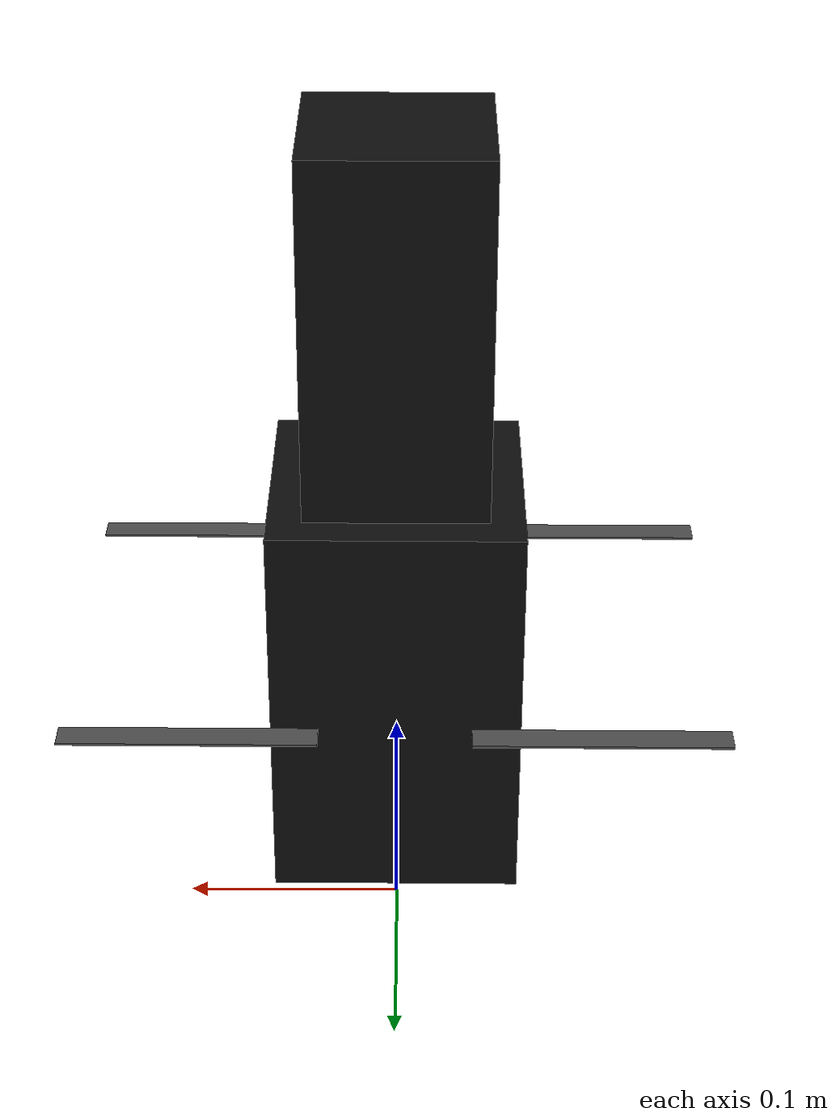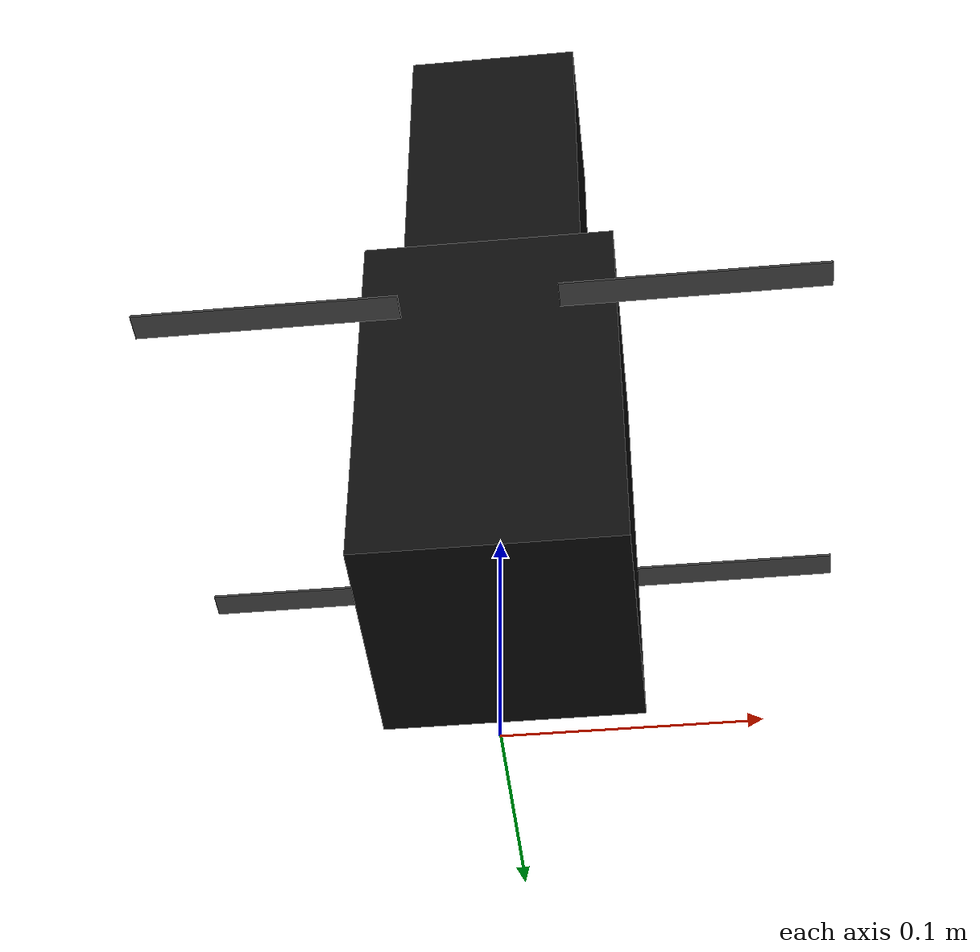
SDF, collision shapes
<?xml version="1.0"?>
<sdf version="1.9">
  <model name="arms_drone">
    <pose>0 0 0.24 0 0 0</pose>
    <self_collide>false</self_collide>
    <static>false</static>

    <!-- ================================================================
         base_link — 동체 + 센서
         ================================================================ -->
    <link name="base_link">
      <!-- 요격드론 물리량: AUW = 1.05kg (실기체 실측 질량과 일치. 동체 1.008 + 로터 4×0.008 + 카메라 0.01).
           관성은 이전값을 질량비(1.008/1.15≈0.877)로 스케일한 근사 — 실기체 실측 관성으로 교체하면
           rate PID 튜닝 전이가 더 정확해진다. -->
      <inertial>
        <mass>1.008</mass>
        <inertia>
          <ixx>0.0019</ixx>
          <ixy>0</ixy>
          <ixz>0</ixz>
          <iyy>0.0019</iyy>
          <iyz>0</iyz>
          <izz>0.0033</izz>
        </inertia>
      </inertial>
      <gravity>true</gravity>
      <velocity_decay/>

      <visual name="base_link_visual">
        <pose>0 0 0 -1.5708 0 0.7854</pose>
        <geometry>
          <mesh>
            <scale>0.001 0.001 0.001</scale>
            <uri>model://arms_drone/meshes/arms_model_v2.stl</uri>
          </mesh>
        </geometry>
        <!-- 무광 블랙 -->
        <material>
          <ambient>0.02 0.02 0.02 1</ambient>
          <diffuse>0.05 0.05 0.05 1</diffuse>
          <specular>0.12 0.12 0.12 1</specular>
        </material>
      </visual>

      <collision name="base_link_collision_0">
        <pose>0 0 -0.1005 0 0 0</pose>
        <geometry>
          <box><size>0.11 0.11 0.181</size></box>
        </geometry>
        <surface>
          <contact><ode><min_depth>0.001</min_depth><max_vel>0</max_vel></ode></contact>
          <friction><ode/></friction>
        </surface>
      </collision>
      <collision name="base_link_collision_1">
        <pose>0 0 0.07 0 0 0</pose>
        <geometry>
          <box><size>0.08 0.08 0.16</size></box>
        </geometry>
        <surface>
          <contact><ode><min_depth>0.001</min_depth><max_vel>0</max_vel></ode></contact>
          <friction><ode/></friction>
        </surface>
      </collision>

      <!-- Sensors -->
      <sensor name="air_pressure_sensor" type="air_pressure">
        <gz_frame_id>base_link</gz_frame_id>
        <always_on>1</always_on>
        <update_rate>50</update_rate>
        <air_pressure>
          <pressure><noise type="gaussian"><mean>0</mean><stddev>3</stddev></noise></pressure>
        </air_pressure>
      </sensor>

      <sensor name="magnetometer_sensor" type="magnetometer">
        <gz_frame_id>base_link</gz_frame_id>
        <always_on>1</always_on>
        <update_rate>100</update_rate>
        <magnetometer>
          <x><noise type="gaussian"><stddev>0.0001</stddev></noise></x>
          <y><noise type="gaussian"><stddev>0.0001</stddev></noise></y>
          <z><noise type="gaussian"><stddev>0.0001</stddev></noise></z>
        </magnetometer>
      </sensor>

      <sensor name="imu_sensor" type="imu">
        <gz_frame_id>base_link</gz_frame_id>
        <always_on>1</always_on>
        <update_rate>250</update_rate>
        <imu>
          <angular_velocity>
            <x><noise type="gaussian"><mean>0.0</mean><stddev>0.0008726646</stddev></noise></x>
            <y><noise type="gaussian"><mean>0.0</mean><stddev>0.0008726646</stddev></noise></y>
            <z><noise type="gaussian"><mean>0.0</mean><stddev>0.0008726646</stddev></noise></z>
          </angular_velocity>
          <linear_acceleration>
            <x><noise type="gaussian"><mean>0.0</mean><stddev>0.00637</stddev></noise></x>
            <y><noise type="gaussian"><mean>0.0</mean><stddev>0.00637</stddev></noise></y>
            <z><noise type="gaussian"><mean>0.0</mean><stddev>0.00686</stddev></noise></z>
          </linear_acceleration>
        </imu>
      </sensor>

      <sensor name="navsat_sensor" type="navsat">
        <gz_frame_id>base_link</gz_frame_id>
        <always_on>1</always_on>
        <update_rate>30</update_rate>
      </sensor>
    </link>

    <!-- ================================================================
         Rotors (4x)
         ================================================================ -->

    <!-- Rotor 0 — front-right, CCW -->
    <link name="rotor_0">
      <gravity>true</gravity>
      <self_collide>false</self_collide>
      <velocity_decay/>
      <pose>0.0876 -0.0876 -0.087 0 0 0</pose>
      <inertial>
        <mass>0.008</mass>
        <inertia>
          <ixx>2.0e-07</ixx>
          <iyy>1.3e-05</iyy>
          <izz>1.3e-05</izz>
        </inertia>
      </inertial>
      <visual name="rotor_0_visual">
        <pose>-0.00944 0.0628 0.00686 3.14159 0 0</pose>   <!-- 프로펠러 상하반전(roll 180°)+센터링. 회전 반영해 오프셋 재계산(안하면 다시 밀림). 추력은 플러그인이 조인트축으로 내므로 영향無 -->
        <geometry>
          <mesh>
            <scale>0.363 0.363 0.363</scale>
            <uri>model://arms_drone/meshes/1345_prop_ccw.stl</uri>
          </mesh>
        </geometry>
        <material><script><name>Gazebo/DarkGrey</name><uri>file://media/materials/scripts/gazebo.material</uri></script></material>
      </visual>
      <!-- 모터벨 제거: arms_model_v2.stl 동체가 모터포드를 이미 포함 -->
      <collision name="rotor_0_collision">
        <pose>0 0 0 0 0 0</pose>
        <geometry><box><size>0.11 0.012 0.001</size></box></geometry>
        <surface><contact><ode><min_depth>0.001</min_depth><max_vel>0</max_vel></ode></contact><friction><ode/></friction></surface>
      </collision>
    </link>
    <joint name="rotor_0_joint" type="revolute">
      <parent>base_link</parent><child>rotor_0</child>
      <axis><xyz>0 0 1</xyz><limit><lower>-1e+16</lower><upper>1e+16</upper></limit><dynamics><spring_reference>0</spring_reference><spring_stiffness>0</spring_stiffness></dynamics></axis>
    </joint>

    <!-- Rotor 1 — rear-left, CCW -->
    <link name="rotor_1">
      <gravity>true</gravity>
      <self_collide>false</self_collide>
      <velocity_decay/>
      <pose>-0.0876 0.0876 -0.087 0 0 0</pose>
      <inertial>
        <mass>0.008</mass>
        <inertia>
          <ixx>2.0e-07</ixx>
          <iyy>1.3e-05</iyy>
          <izz>1.3e-05</izz>
        </inertia>
      </inertial>
      <visual name="rotor_1_visual">
        <pose>-0.00944 0.0628 0.00686 3.14159 0 0</pose>   <!-- 프로펠러 상하반전(roll 180°)+센터링. 회전 반영해 오프셋 재계산(안하면 다시 밀림). 추력은 플러그인이 조인트축으로 내므로 영향無 -->
        <geometry>
          <mesh>
            <scale>0.363 0.363 0.363</scale>
            <uri>model://arms_drone/meshes/1345_prop_ccw.stl</uri>
          </mesh>
        </geometry>
        <material><script><name>Gazebo/DarkGrey</name><uri>file://media/materials/scripts/gazebo.material</uri></script></material>
      </visual>
      <collision name="rotor_1_collision">
        <pose>0 0 0 0 0 0</pose>
        <geometry><box><size>0.11 0.012 0.001</size></box></geometry>
        <surface><contact><ode><min_depth>0.001</min_depth><max_vel>0</max_vel></ode></contact><friction><ode/></friction></surface>
      </collision>
    </link>
    <joint name="rotor_1_joint" type="revolute">
      <parent>base_link</parent><child>rotor_1</child>
      <axis><xyz>0 0 1</xyz><limit><lower>-1e+16</lower><upper>1e+16</upper></limit><dynamics><spring_reference>0</spring_reference><spring_stiffness>0</spring_stiffness></dynamics></axis>
    </joint>

    <!-- Rotor 2 — front-left, CW -->
    <link name="rotor_2">
      <gravity>true</gravity>
      <self_collide>false</self_collide>
      <velocity_decay/>
      <pose>0.0876 0.0876 -0.087 0 0 0</pose>
      <inertial>
        <mass>0.008</mass>
        <inertia>
          <ixx>2.0e-07</ixx>
          <iyy>1.3e-05</iyy>
          <izz>1.3e-05</izz>
        </inertia>
      </inertial>
      <visual name="rotor_2_visual">
        <pose>-0.00944 0.0628 0.00686 3.14159 0 0</pose>   <!-- 프로펠러 상하반전(roll 180°)+센터링. 회전 반영해 오프셋 재계산(안하면 다시 밀림). 추력은 플러그인이 조인트축으로 내므로 영향無 -->
        <geometry>
          <mesh>
            <scale>0.363 0.363 0.363</scale>
            <uri>model://arms_drone/meshes/1345_prop_cw.stl</uri>
          </mesh>
        </geometry>
        <material><script><name>Gazebo/DarkGrey</name><uri>file://media/materials/scripts/gazebo.material</uri></script></material>
      </visual>
      <collision name="rotor_2_collision">
        <pose>0 0 0 0 0 0</pose>
        <geometry><box><size>0.11 0.012 0.001</size></box></geometry>
        <surface><contact><ode><min_depth>0.001</min_depth><max_vel>0</max_vel></ode></contact><friction><ode/></friction></surface>
      </collision>
    </link>
    <joint name="rotor_2_joint" type="revolute">
      <parent>base_link</parent><child>rotor_2</child>
      <axis><xyz>0 0 1</xyz><limit><lower>-1e+16</lower><upper>1e+16</upper></limit><dynamics><spring_reference>0</spring_reference><spring_stiffness>0</spring_stiffness></dynamics></axis>
    </joint>

    <!-- Rotor 3 — rear-right, CW -->
    <link name="rotor_3">
      <gravity>true</gravity>
      <self_collide>false</self_collide>
      <velocity_decay/>
      <pose>-0.0876 -0.0876 -0.087 0 0 0</pose>
      <inertial>
        <mass>0.008</mass>
        <inertia>
          <ixx>2.0e-07</ixx>
          <iyy>1.3e-05</iyy>
          <izz>1.3e-05</izz>
        </inertia>
      </inertial>
      <visual name="rotor_3_visual">
        <pose>-0.00944 0.0628 0.00686 3.14159 0 0</pose>   <!-- 프로펠러 상하반전(roll 180°)+센터링. 회전 반영해 오프셋 재계산(안하면 다시 밀림). 추력은 플러그인이 조인트축으로 내므로 영향無 -->
        <geometry>
          <mesh>
            <scale>0.363 0.363 0.363</scale>
            <uri>model://arms_drone/meshes/1345_prop_cw.stl</uri>
          </mesh>
        </geometry>
        <material><script><name>Gazebo/DarkGrey</name><uri>file://media/materials/scripts/gazebo.material</uri></script></material>
      </visual>
      <collision name="rotor_3_collision">
        <pose>0 0 0 0 0 0</pose>
        <geometry><box><size>0.11 0.012 0.001</size></box></geometry>
        <surface><contact><ode><min_depth>0.001</min_depth><max_vel>0</max_vel></ode></contact><friction><ode/></friction></surface>
      </collision>
    </link>
    <joint name="rotor_3_joint" type="revolute">
      <parent>base_link</parent><child>rotor_3</child>
      <axis><xyz>0 0 1</xyz><limit><lower>-1e+16</lower><upper>1e+16</upper></limit><dynamics><spring_reference>0</spring_reference><spring_stiffness>0</spring_stiffness></dynamics></axis>
    </joint>

    <!-- ================================================================
         Motor plugins (from x500)
         ================================================================ -->
    <plugin filename="gz-sim-multicopter-motor-model-system" name="gz::sim::systems::MulticopterMotorModel">
      <jointName>rotor_0_joint</jointName>
      <linkName>rotor_0</linkName>
      <turningDirection>ccw</turningDirection>
      <timeConstantUp>0.0125</timeConstantUp>
      <timeConstantDown>0.025</timeConstantDown>
      <maxRotVelocity>1000.0</maxRotVelocity>
      <motorConstant>9.81e-06</motorConstant>
      <momentConstant>0.016</momentConstant>
      <commandSubTopic>command/motor_speed</commandSubTopic>
      <motorNumber>0</motorNumber>
      <rotorDragCoefficient>8.06428e-05</rotorDragCoefficient>
      <rollingMomentCoefficient>1e-06</rollingMomentCoefficient>
      <rotorVelocitySlowdownSim>10</rotorVelocitySlowdownSim>
      <motorType>velocity</motorType>
    </plugin>
    <plugin filename="gz-sim-multicopter-motor-model-system" name="gz::sim::systems::MulticopterMotorModel">
      <jointName>rotor_1_joint</jointName>
      <linkName>rotor_1</linkName>
      <turningDirection>ccw</turningDirection>
      <timeConstantUp>0.0125</timeConstantUp>
      <timeConstantDown>0.025</timeConstantDown>
      <maxRotVelocity>1000.0</maxRotVelocity>
      <motorConstant>9.81e-06</motorConstant>
      <momentConstant>0.016</momentConstant>
      <commandSubTopic>command/motor_speed</commandSubTopic>
      <motorNumber>1</motorNumber>
      <rotorDragCoefficient>8.06428e-05</rotorDragCoefficient>
      <rollingMomentCoefficient>1e-06</rollingMomentCoefficient>
      <rotorVelocitySlowdownSim>10</rotorVelocitySlowdownSim>
      <motorType>velocity</motorType>
    </plugin>
    <plugin filename="gz-sim-multicopter-motor-model-system" name="gz::sim::systems::MulticopterMotorModel">
      <jointName>rotor_2_joint</jointName>
      <linkName>rotor_2</linkName>
      <turningDirection>cw</turningDirection>
      <timeConstantUp>0.0125</timeConstantUp>
      <timeConstantDown>0.025</timeConstantDown>
      <maxRotVelocity>1000.0</maxRotVelocity>
      <motorConstant>9.81e-06</motorConstant>
      <momentConstant>0.016</momentConstant>
      <commandSubTopic>command/motor_speed</commandSubTopic>
      <motorNumber>2</motorNumber>
      <rotorDragCoefficient>8.06428e-05</rotorDragCoefficient>
      <rollingMomentCoefficient>1e-06</rollingMomentCoefficient>
      <rotorVelocitySlowdownSim>10</rotorVelocitySlowdownSim>
      <motorType>velocity</motorType>
    </plugin>
    <plugin filename="gz-sim-multicopter-motor-model-system" name="gz::sim::systems::MulticopterMotorModel">
      <jointName>rotor_3_joint</jointName>
      <linkName>rotor_3</linkName>
      <turningDirection>cw</turningDirection>
      <timeConstantUp>0.0125</timeConstantUp>
      <timeConstantDown>0.025</timeConstantDown>
      <maxRotVelocity>1000.0</maxRotVelocity>
      <motorConstant>9.81e-06</motorConstant>
      <momentConstant>0.016</momentConstant>
      <commandSubTopic>command/motor_speed</commandSubTopic>
      <motorNumber>3</motorNumber>
      <rotorDragCoefficient>8.06428e-05</rotorDragCoefficient>
      <rollingMomentCoefficient>1e-06</rollingMomentCoefficient>
      <rotorVelocitySlowdownSim>10</rotorVelocitySlowdownSim>
      <motorType>velocity</motorType>
    </plugin>

    <!-- ================================================================
         Upward-facing camera (+Z body)
         ================================================================ -->
    <link name="upward_camera_link">
      <pose relative_to="base_link">0 0 1.0 0 -1.5708 0</pose>
      <inertial>
        <mass>0.01</mass>
        <inertia><ixx>1e-6</ixx><iyy>1e-6</iyy><izz>1e-6</izz></inertia>
      </inertial>
      <sensor name="upward_camera" type="camera">
        <pose>0 0 0 0 0 0</pose>
        <always_on>true</always_on>
        <update_rate>60</update_rate>   <!-- 30→60Hz: LOS각속도 추정 신선도↑ → PN 정확도·안정성↑ -->

        <camera>
          <horizontal_fov>2.0</horizontal_fov>   <!-- 광각 ~115° (반각 57°): 기동 중에도 표적 유지 -->

          <image>
            <width>720</width>    <!-- 실기체 FPV 카메라 해상도(720x480, 3:2)에 맞춤 -->
            <height>480</height>
            <format>R8G8B8</format>
          </image>
          <clip>
            <near>0.1</near>
            <far>100</far>
          </clip>
        </camera>
        <topic>/arms_drone/upward_camera/image</topic>
      </sensor>
    </link>
    <joint name="upward_camera_joint" type="fixed">
      <parent>base_link</parent>
      <child>upward_camera_link</child>
    </joint>

  </model>
</sdf>
